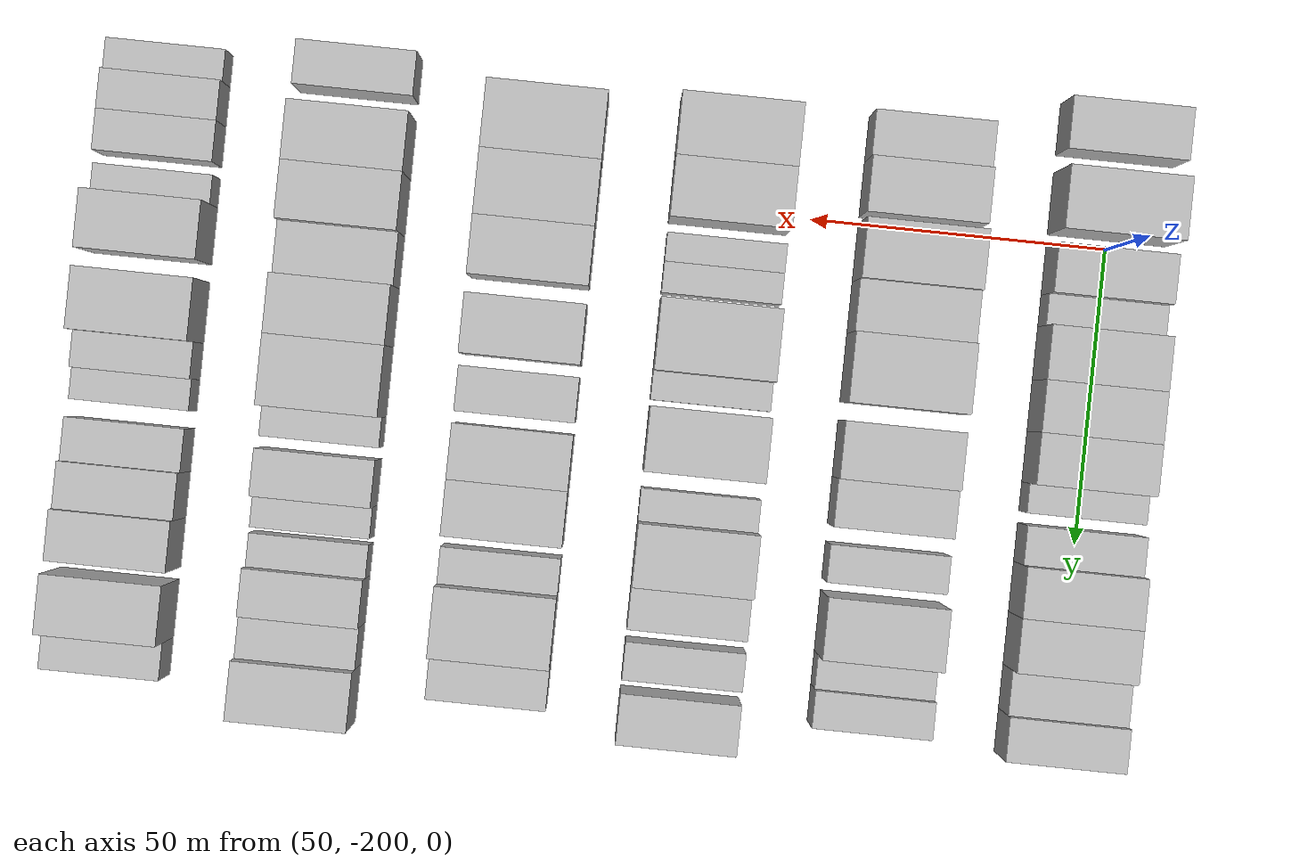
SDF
<sdf version="1.6">
 <world name="default">
  <model name="building_38">
   <static>1</static>
   <pose>50.0000 -219.4275 0 0.000000 0.000000 0.000000</pose>
   <link name="link">
    <pose>0 0 9.00 0 0 0</pose>
    <collision name="collision"><geometry><box><size>20.0000 8.7472 18.0000</size></box></geometry></collision>
    <visual name="visual">
     <cast_shadows>0</cast_shadows>
     <geometry><box><size>20.0000 8.7472 18.0000</size></box></geometry>
     <material>
      <script>
       <uri>model://HANNAS_wall/materials/scripts</uri>
       <uri>model://HANNAS_wall/materials/textures</uri>
       <name>vrc/HANNAS_wall</name>
      </script>
     </material>
    </visual>
   </link>
  </model>
  <model name="building_39">
   <static>1</static>
   <pose>50.0000 -206.8261 0 0.000000 0.000000 0.000000</pose>
   <link name="link">
    <pose>0 0 12.00 0 0 0</pose>
    <collision name="collision"><geometry><box><size>20.0000 10.4555 24.0000</size></box></geometry></collision>
    <visual name="visual">
     <cast_shadows>0</cast_shadows>
     <geometry><box><size>20.0000 10.4555 24.0000</size></box></geometry>
     <material>
      <script>
       <uri>model://HANNAS_wall/materials/scripts</uri>
       <uri>model://HANNAS_wall/materials/textures</uri>
       <name>vrc/HANNAS_wall</name>
      </script>
     </material>
    </visual>
   </link>
  </model>
  <model name="building_40">
   <static>1</static>
   <pose>50.0000 -195.4570 0 0.000000 0.000000 0.000000</pose>
   <link name="link">
    <pose>0 0 9.00 0 0 0</pose>
    <collision name="collision"><geometry><box><size>20.0000 8.2828 18.0000</size></box></geometry></collision>
    <visual name="visual">
     <cast_shadows>0</cast_shadows>
     <geometry><box><size>20.0000 8.2828 18.0000</size></box></geometry>
     <material>
      <script>
       <uri>model://HANNAS_wall/materials/scripts</uri>
       <uri>model://HANNAS_wall/materials/textures</uri>
       <name>vrc/HANNAS_wall</name>
      </script>
     </material>
    </visual>
   </link>
  </model>
  <model name="building_41">
   <static>1</static>
   <pose>50.0000 -188.6431 0 0.000000 0.000000 0.000000</pose>
   <link name="link">
    <pose>0 0 6.00 0 0 0</pose>
    <collision name="collision"><geometry><box><size>20.0000 5.3450 12.0000</size></box></geometry></collision>
    <visual name="visual">
     <cast_shadows>0</cast_shadows>
     <geometry><box><size>20.0000 5.3450 12.0000</size></box></geometry>
     <material>
      <script>
       <uri>model://HANNAS_wall/materials/scripts</uri>
       <uri>model://HANNAS_wall/materials/textures</uri>
       <name>vrc/HANNAS_wall</name>
      </script>
     </material>
    </visual>
   </link>
  </model>
  <model name="building_42">
   <static>1</static>
   <pose>50.0000 -181.4377 0 0.000000 0.000000 0.000000</pose>
   <link name="link">
    <pose>0 0 10.50 0 0 0</pose>
    <collision name="collision"><geometry><box><size>20.0000 9.0657 21.0000</size></box></geometry></collision>
    <visual name="visual">
     <cast_shadows>0</cast_shadows>
     <geometry><box><size>20.0000 9.0657 21.0000</size></box></geometry>
     <material>
      <script>
       <uri>model://HANNAS_wall/materials/scripts</uri>
       <uri>model://HANNAS_wall/materials/textures</uri>
       <name>vrc/HANNAS_wall</name>
      </script>
     </material>
    </visual>
   </link>
  </model>
  <model name="building_43">
   <static>1</static>
   <pose>50.0000 -172.5675 0 0.000000 0.000000 0.000000</pose>
   <link name="link">
    <pose>0 0 10.50 0 0 0</pose>
    <collision name="collision"><geometry><box><size>20.0000 8.6747 21.0000</size></box></geometry></collision>
    <visual name="visual">
     <cast_shadows>0</cast_shadows>
     <geometry><box><size>20.0000 8.6747 21.0000</size></box></geometry>
     <material>
      <script>
       <uri>model://HANNAS_wall/materials/scripts</uri>
       <uri>model://HANNAS_wall/materials/textures</uri>
       <name>vrc/HANNAS_wall</name>
      </script>
     </material>
    </visual>
   </link>
  </model>
  <model name="building_44">
   <static>1</static>
   <pose>50.0000 -163.9352 0 0.000000 0.000000 0.000000</pose>
   <link name="link">
    <pose>0 0 10.50 0 0 0</pose>
    <collision name="collision"><geometry><box><size>20.0000 8.5899 21.0000</size></box></geometry></collision>
    <visual name="visual">
     <cast_shadows>0</cast_shadows>
     <geometry><box><size>20.0000 8.5899 21.0000</size></box></geometry>
     <material>
      <script>
       <uri>model://HANNAS_wall/materials/scripts</uri>
       <uri>model://HANNAS_wall/materials/textures</uri>
       <name>vrc/HANNAS_wall</name>
      </script>
     </material>
    </visual>
   </link>
  </model>
  <model name="building_45">
   <static>1</static>
   <pose>50.0000 -157.1829 0 0.000000 0.000000 0.000000</pose>
   <link name="link">
    <pose>0 0 6.00 0 0 0</pose>
    <collision name="collision"><geometry><box><size>20.0000 4.9147 12.0000</size></box></geometry></collision>
    <visual name="visual">
     <cast_shadows>0</cast_shadows>
     <geometry><box><size>20.0000 4.9147 12.0000</size></box></geometry>
     <material>
      <script>
       <uri>model://HANNAS_wall/materials/scripts</uri>
       <uri>model://HANNAS_wall/materials/textures</uri>
       <name>vrc/HANNAS_wall</name>
      </script>
     </material>
    </visual>
   </link>
  </model>
  <model name="building_46">
   <static>1</static>
   <pose>50.0000 -149.4279 0 0.000000 0.000000 0.000000</pose>
   <link name="link">
    <pose>0 0 7.50 0 0 0</pose>
    <collision name="collision"><geometry><box><size>20.0000 6.5952 15.0000</size></box></geometry></collision>
    <visual name="visual">
     <cast_shadows>0</cast_shadows>
     <geometry><box><size>20.0000 6.5952 15.0000</size></box></geometry>
     <material>
      <script>
       <uri>model://HANNAS_wall/materials/scripts</uri>
       <uri>model://HANNAS_wall/materials/textures</uri>
       <name>vrc/HANNAS_wall</name>
      </script>
     </material>
    </visual>
   </link>
  </model>
  <model name="building_47">
   <static>1</static>
   <pose>50.0000 -141.8846 0 0.000000 0.000000 0.000000</pose>
   <link name="link">
    <pose>0 0 10.50 0 0 0</pose>
    <collision name="collision"><geometry><box><size>20.0000 8.4914 21.0000</size></box></geometry></collision>
    <visual name="visual">
     <cast_shadows>0</cast_shadows>
     <geometry><box><size>20.0000 8.4914 21.0000</size></box></geometry>
     <material>
      <script>
       <uri>model://HANNAS_wall/materials/scripts</uri>
       <uri>model://HANNAS_wall/materials/textures</uri>
       <name>vrc/HANNAS_wall</name>
      </script>
     </material>
    </visual>
   </link>
  </model>
  <model name="building_48">
   <static>1</static>
   <pose>50.0000 -133.1602 0 0.000000 0.000000 0.000000</pose>
   <link name="link">
    <pose>0 0 10.50 0 0 0</pose>
    <collision name="collision"><geometry><box><size>20.0000 8.9574 21.0000</size></box></geometry></collision>
    <visual name="visual">
     <cast_shadows>0</cast_shadows>
     <geometry><box><size>20.0000 8.9574 21.0000</size></box></geometry>
     <material>
      <script>
       <uri>model://HANNAS_wall/materials/scripts</uri>
       <uri>model://HANNAS_wall/materials/textures</uri>
       <name>vrc/HANNAS_wall</name>
      </script>
     </material>
    </visual>
   </link>
  </model>
  <model name="building_49">
   <static>1</static>
   <pose>50.0000 -124.9397 0 0.000000 0.000000 0.000000</pose>
   <link name="link">
    <pose>0 0 7.50 0 0 0</pose>
    <collision name="collision"><geometry><box><size>20.0000 7.4837 15.0000</size></box></geometry></collision>
    <visual name="visual">
     <cast_shadows>0</cast_shadows>
     <geometry><box><size>20.0000 7.4837 15.0000</size></box></geometry>
     <material>
      <script>
       <uri>model://HANNAS_wall/materials/scripts</uri>
       <uri>model://HANNAS_wall/materials/textures</uri>
       <name>vrc/HANNAS_wall</name>
      </script>
     </material>
    </visual>
   </link>
  </model>
  <model name="building_50">
   <static>1</static>
   <pose>50.0000 -117.5164 0 0.000000 0.000000 0.000000</pose>
   <link name="link">
    <pose>0 0 9.00 0 0 0</pose>
    <collision name="collision"><geometry><box><size>20.0000 7.3629 18.0000</size></box></geometry></collision>
    <visual name="visual">
     <cast_shadows>0</cast_shadows>
     <geometry><box><size>20.0000 7.3629 18.0000</size></box></geometry>
     <material>
      <script>
       <uri>model://HANNAS_wall/materials/scripts</uri>
       <uri>model://HANNAS_wall/materials/textures</uri>
       <name>vrc/HANNAS_wall</name>
      </script>
     </material>
    </visual>
   </link>
  </model>
  <model name="building_162">
   <static>1</static>
   <pose>82.0000 -214.3514 0 0.000000 0.000000 0.000000</pose>
   <link name="link">
    <pose>0 0 9.00 0 0 0</pose>
    <collision name="collision"><geometry><box><size>20.0000 7.7878 18.0000</size></box></geometry></collision>
    <visual name="visual">
     <cast_shadows>0</cast_shadows>
     <geometry><box><size>20.0000 7.7878 18.0000</size></box></geometry>
     <material>
      <script>
       <uri>model://HANNAS_wall/materials/scripts</uri>
       <uri>model://HANNAS_wall/materials/textures</uri>
       <name>vrc/HANNAS_wall</name>
      </script>
     </material>
    </visual>
   </link>
  </model>
  <model name="building_163">
   <static>1</static>
   <pose>82.0000 -205.8261 0 0.000000 0.000000 0.000000</pose>
   <link name="link">
    <pose>0 0 10.50 0 0 0</pose>
    <collision name="collision"><geometry><box><size>20.0000 9.2627 21.0000</size></box></geometry></collision>
    <visual name="visual">
     <cast_shadows>0</cast_shadows>
     <geometry><box><size>20.0000 9.2627 21.0000</size></box></geometry>
     <material>
      <script>
       <uri>model://HANNAS_wall/materials/scripts</uri>
       <uri>model://HANNAS_wall/materials/textures</uri>
       <name>vrc/HANNAS_wall</name>
      </script>
     </material>
    </visual>
   </link>
  </model>
  <model name="building_164">
   <static>1</static>
   <pose>82.0000 -195.2142 0 0.000000 0.000000 0.000000</pose>
   <link name="link">
    <pose>0 0 12.00 0 0 0</pose>
    <collision name="collision"><geometry><box><size>20.0000 9.9611 24.0000</size></box></geometry></collision>
    <visual name="visual">
     <cast_shadows>0</cast_shadows>
     <geometry><box><size>20.0000 9.9611 24.0000</size></box></geometry>
     <material>
      <script>
       <uri>model://HANNAS_wall/materials/scripts</uri>
       <uri>model://HANNAS_wall/materials/textures</uri>
       <name>vrc/HANNAS_wall</name>
      </script>
     </material>
    </visual>
   </link>
  </model>
  <model name="building_165">
   <static>1</static>
   <pose>82.0000 -185.8773 0 0.000000 0.000000 0.000000</pose>
   <link name="link">
    <pose>0 0 10.50 0 0 0</pose>
    <collision name="collision"><geometry><box><size>20.0000 8.7129 21.0000</size></box></geometry></collision>
    <visual name="visual">
     <cast_shadows>0</cast_shadows>
     <geometry><box><size>20.0000 8.7129 21.0000</size></box></geometry>
     <material>
      <script>
       <uri>model://HANNAS_wall/materials/scripts</uri>
       <uri>model://HANNAS_wall/materials/textures</uri>
       <name>vrc/HANNAS_wall</name>
      </script>
     </material>
    </visual>
   </link>
  </model>
  <model name="building_166">
   <static>1</static>
   <pose>82.0000 -175.6885 0 0.000000 0.000000 0.000000</pose>
   <link name="link">
    <pose>0 0 12.00 0 0 0</pose>
    <collision name="collision"><geometry><box><size>20.0000 11.6646 24.0000</size></box></geometry></collision>
    <visual name="visual">
     <cast_shadows>0</cast_shadows>
     <geometry><box><size>20.0000 11.6646 24.0000</size></box></geometry>
     <material>
      <script>
       <uri>model://HANNAS_wall/materials/scripts</uri>
       <uri>model://HANNAS_wall/materials/textures</uri>
       <name>vrc/HANNAS_wall</name>
      </script>
     </material>
    </visual>
   </link>
  </model>
  <model name="building_167">
   <static>1</static>
   <pose>82.0000 -162.0778 0 0.000000 0.000000 0.000000</pose>
   <link name="link">
    <pose>0 0 10.50 0 0 0</pose>
    <collision name="collision"><geometry><box><size>20.0000 9.5568 21.0000</size></box></geometry></collision>
    <visual name="visual">
     <cast_shadows>0</cast_shadows>
     <geometry><box><size>20.0000 9.5568 21.0000</size></box></geometry>
     <material>
      <script>
       <uri>model://HANNAS_wall/materials/scripts</uri>
       <uri>model://HANNAS_wall/materials/textures</uri>
       <name>vrc/HANNAS_wall</name>
      </script>
     </material>
    </visual>
   </link>
  </model>
  <model name="building_168">
   <static>1</static>
   <pose>82.0000 -153.3064 0 0.000000 0.000000 0.000000</pose>
   <link name="link">
    <pose>0 0 9.00 0 0 0</pose>
    <collision name="collision"><geometry><box><size>20.0000 7.9859 18.0000</size></box></geometry></collision>
    <visual name="visual">
     <cast_shadows>0</cast_shadows>
     <geometry><box><size>20.0000 7.9859 18.0000</size></box></geometry>
     <material>
      <script>
       <uri>model://HANNAS_wall/materials/scripts</uri>
       <uri>model://HANNAS_wall/materials/textures</uri>
       <name>vrc/HANNAS_wall</name>
      </script>
     </material>
    </visual>
   </link>
  </model>
  <model name="building_169">
   <static>1</static>
   <pose>82.0000 -143.1608 0 0.000000 0.000000 0.000000</pose>
   <link name="link">
    <pose>0 0 7.50 0 0 0</pose>
    <collision name="collision"><geometry><box><size>20.0000 6.3053 15.0000</size></box></geometry></collision>
    <visual name="visual">
     <cast_shadows>0</cast_shadows>
     <geometry><box><size>20.0000 6.3053 15.0000</size></box></geometry>
     <material>
      <script>
       <uri>model://HANNAS_wall/materials/scripts</uri>
       <uri>model://HANNAS_wall/materials/textures</uri>
       <name>vrc/HANNAS_wall</name>
      </script>
     </material>
    </visual>
   </link>
  </model>
  <model name="building_170">
   <static>1</static>
   <pose>82.0000 -132.8674 0 0.000000 0.000000 0.000000</pose>
   <link name="link">
    <pose>0 0 12.00 0 0 0</pose>
    <collision name="collision"><geometry><box><size>20.0000 10.2815 24.0000</size></box></geometry></collision>
    <visual name="visual">
     <cast_shadows>0</cast_shadows>
     <geometry><box><size>20.0000 10.2815 24.0000</size></box></geometry>
     <material>
      <script>
       <uri>model://HANNAS_wall/materials/scripts</uri>
       <uri>model://HANNAS_wall/materials/textures</uri>
       <name>vrc/HANNAS_wall</name>
      </script>
     </material>
    </visual>
   </link>
  </model>
  <model name="building_171">
   <static>1</static>
   <pose>82.0000 -124.9114 0 0.000000 0.000000 0.000000</pose>
   <link name="link">
    <pose>0 0 6.00 0 0 0</pose>
    <collision name="collision"><geometry><box><size>20.0000 5.6306 12.0000</size></box></geometry></collision>
    <visual name="visual">
     <cast_shadows>0</cast_shadows>
     <geometry><box><size>20.0000 5.6306 12.0000</size></box></geometry>
     <material>
      <script>
       <uri>model://HANNAS_wall/materials/scripts</uri>
       <uri>model://HANNAS_wall/materials/textures</uri>
       <name>vrc/HANNAS_wall</name>
      </script>
     </material>
    </visual>
   </link>
  </model>
  <model name="building_172">
   <static>1</static>
   <pose>82.0000 -118.9511 0 0.000000 0.000000 0.000000</pose>
   <link name="link">
    <pose>0 0 7.50 0 0 0</pose>
    <collision name="collision"><geometry><box><size>20.0000 6.2899 15.0000</size></box></geometry></collision>
    <visual name="visual">
     <cast_shadows>0</cast_shadows>
     <geometry><box><size>20.0000 6.2899 15.0000</size></box></geometry>
     <material>
      <script>
       <uri>model://HANNAS_wall/materials/scripts</uri>
       <uri>model://HANNAS_wall/materials/textures</uri>
       <name>vrc/HANNAS_wall</name>
      </script>
     </material>
    </visual>
   </link>
  </model>
  <model name="building_282">
   <static>1</static>
   <pose>114.0000 -212.3161 0 0.000000 0.000000 0.000000</pose>
   <link name="link">
    <pose>0 0 12.00 0 0 0</pose>
    <collision name="collision"><geometry><box><size>20.0000 10.4856 24.0000</size></box></geometry></collision>
    <visual name="visual">
     <cast_shadows>0</cast_shadows>
     <geometry><box><size>20.0000 10.4856 24.0000</size></box></geometry>
     <material>
      <script>
       <uri>model://HANNAS_wall/materials/scripts</uri>
       <uri>model://HANNAS_wall/materials/textures</uri>
       <name>vrc/HANNAS_wall</name>
      </script>
     </material>
    </visual>
   </link>
  </model>
  <model name="building_283">
   <static>1</static>
   <pose>114.0000 -202.0130 0 0.000000 0.000000 0.000000</pose>
   <link name="link">
    <pose>0 0 12.00 0 0 0</pose>
    <collision name="collision"><geometry><box><size>20.0000 10.1205 24.0000</size></box></geometry></collision>
    <visual name="visual">
     <cast_shadows>0</cast_shadows>
     <geometry><box><size>20.0000 10.1205 24.0000</size></box></geometry>
     <material>
      <script>
       <uri>model://HANNAS_wall/materials/scripts</uri>
       <uri>model://HANNAS_wall/materials/textures</uri>
       <name>vrc/HANNAS_wall</name>
      </script>
     </material>
    </visual>
   </link>
  </model>
  <model name="building_284">
   <static>1</static>
   <pose>114.0000 -192.5297 0 0.000000 0.000000 0.000000</pose>
   <link name="link">
    <pose>0 0 6.00 0 0 0</pose>
    <collision name="collision"><geometry><box><size>20.0000 4.8463 12.0000</size></box></geometry></collision>
    <visual name="visual">
     <cast_shadows>0</cast_shadows>
     <geometry><box><size>20.0000 4.8463 12.0000</size></box></geometry>
     <material>
      <script>
       <uri>model://HANNAS_wall/materials/scripts</uri>
       <uri>model://HANNAS_wall/materials/textures</uri>
       <name>vrc/HANNAS_wall</name>
      </script>
     </material>
    </visual>
   </link>
  </model>
  <model name="building_285">
   <static>1</static>
   <pose>114.0000 -187.4774 0 0.000000 0.000000 0.000000</pose>
   <link name="link">
    <pose>0 0 6.00 0 0 0</pose>
    <collision name="collision"><geometry><box><size>20.0000 5.2582 12.0000</size></box></geometry></collision>
    <visual name="visual">
     <cast_shadows>0</cast_shadows>
     <geometry><box><size>20.0000 5.2582 12.0000</size></box></geometry>
     <material>
      <script>
       <uri>model://HANNAS_wall/materials/scripts</uri>
       <uri>model://HANNAS_wall/materials/textures</uri>
       <name>vrc/HANNAS_wall</name>
      </script>
     </material>
    </visual>
   </link>
  </model>
  <model name="building_286">
   <static>1</static>
   <pose>114.0000 -177.8605 0 0.000000 0.000000 0.000000</pose>
   <link name="link">
    <pose>0 0 12.00 0 0 0</pose>
    <collision name="collision"><geometry><box><size>20.0000 11.9756 24.0000</size></box></geometry></collision>
    <visual name="visual">
     <cast_shadows>0</cast_shadows>
     <geometry><box><size>20.0000 11.9756 24.0000</size></box></geometry>
     <material>
      <script>
       <uri>model://HANNAS_wall/materials/scripts</uri>
       <uri>model://HANNAS_wall/materials/textures</uri>
       <name>vrc/HANNAS_wall</name>
      </script>
     </material>
    </visual>
   </link>
  </model>
  <model name="building_287">
   <static>1</static>
   <pose>114.0000 -169.4391 0 0.000000 0.000000 0.000000</pose>
   <link name="link">
    <pose>0 0 6.00 0 0 0</pose>
    <collision name="collision"><geometry><box><size>20.0000 4.8673 12.0000</size></box></geometry></collision>
    <visual name="visual">
     <cast_shadows>0</cast_shadows>
     <geometry><box><size>20.0000 4.8673 12.0000</size></box></geometry>
     <material>
      <script>
       <uri>model://HANNAS_wall/materials/scripts</uri>
       <uri>model://HANNAS_wall/materials/textures</uri>
       <name>vrc/HANNAS_wall</name>
      </script>
     </material>
    </visual>
   </link>
  </model>
  <model name="building_288">
   <static>1</static>
   <pose>114.0000 -160.6429 0 0.000000 0.000000 0.000000</pose>
   <link name="link">
    <pose>0 0 12.00 0 0 0</pose>
    <collision name="collision"><geometry><box><size>20.0000 10.7250 24.0000</size></box></geometry></collision>
    <visual name="visual">
     <cast_shadows>0</cast_shadows>
     <geometry><box><size>20.0000 10.7250 24.0000</size></box></geometry>
     <material>
      <script>
       <uri>model://HANNAS_wall/materials/scripts</uri>
       <uri>model://HANNAS_wall/materials/textures</uri>
       <name>vrc/HANNAS_wall</name>
      </script>
     </material>
    </visual>
   </link>
  </model>
  <model name="building_289">
   <static>1</static>
   <pose>114.0000 -149.5323 0 0.000000 0.000000 0.000000</pose>
   <link name="link">
    <pose>0 0 6.00 0 0 0</pose>
    <collision name="collision"><geometry><box><size>20.0000 5.4963 12.0000</size></box></geometry></collision>
    <visual name="visual">
     <cast_shadows>0</cast_shadows>
     <geometry><box><size>20.0000 5.4963 12.0000</size></box></geometry>
     <material>
      <script>
       <uri>model://HANNAS_wall/materials/scripts</uri>
       <uri>model://HANNAS_wall/materials/textures</uri>
       <name>vrc/HANNAS_wall</name>
      </script>
     </material>
    </visual>
   </link>
  </model>
  <model name="building_290">
   <static>1</static>
   <pose>114.0000 -141.5375 0 0.000000 0.000000 0.000000</pose>
   <link name="link">
    <pose>0 0 12.00 0 0 0</pose>
    <collision name="collision"><geometry><box><size>20.0000 10.4931 24.0000</size></box></geometry></collision>
    <visual name="visual">
     <cast_shadows>0</cast_shadows>
     <geometry><box><size>20.0000 10.4931 24.0000</size></box></geometry>
     <material>
      <script>
       <uri>model://HANNAS_wall/materials/scripts</uri>
       <uri>model://HANNAS_wall/materials/textures</uri>
       <name>vrc/HANNAS_wall</name>
      </script>
     </material>
    </visual>
   </link>
  </model>
  <model name="building_291">
   <static>1</static>
   <pose>114.0000 -132.5868 0 0.000000 0.000000 0.000000</pose>
   <link name="link">
    <pose>0 0 7.50 0 0 0</pose>
    <collision name="collision"><geometry><box><size>20.0000 7.4084 15.0000</size></box></geometry></collision>
    <visual name="visual">
     <cast_shadows>0</cast_shadows>
     <geometry><box><size>20.0000 7.4084 15.0000</size></box></geometry>
     <material>
      <script>
       <uri>model://HANNAS_wall/materials/scripts</uri>
       <uri>model://HANNAS_wall/materials/textures</uri>
       <name>vrc/HANNAS_wall</name>
      </script>
     </material>
    </visual>
   </link>
  </model>
  <model name="building_292">
   <static>1</static>
   <pose>114.0000 -123.7070 0 0.000000 0.000000 0.000000</pose>
   <link name="link">
    <pose>0 0 7.50 0 0 0</pose>
    <collision name="collision"><geometry><box><size>20.0000 6.3512 15.0000</size></box></geometry></collision>
    <visual name="visual">
     <cast_shadows>0</cast_shadows>
     <geometry><box><size>20.0000 6.3512 15.0000</size></box></geometry>
     <material>
      <script>
       <uri>model://HANNAS_wall/materials/scripts</uri>
       <uri>model://HANNAS_wall/materials/textures</uri>
       <name>vrc/HANNAS_wall</name>
      </script>
     </material>
    </visual>
   </link>
  </model>
  <model name="building_293">
   <static>1</static>
   <pose>114.0000 -114.2984 0 0.000000 0.000000 0.000000</pose>
   <link name="link">
    <pose>0 0 9.00 0 0 0</pose>
    <collision name="collision"><geometry><box><size>20.0000 8.4658 18.0000</size></box></geometry></collision>
    <visual name="visual">
     <cast_shadows>0</cast_shadows>
     <geometry><box><size>20.0000 8.4658 18.0000</size></box></geometry>
     <material>
      <script>
       <uri>model://HANNAS_wall/materials/scripts</uri>
       <uri>model://HANNAS_wall/materials/textures</uri>
       <name>vrc/HANNAS_wall</name>
      </script>
     </material>
    </visual>
   </link>
  </model>
  <model name="building_408">
   <static>1</static>
   <pose>146.0000 -210.6489 0 0.000000 0.000000 0.000000</pose>
   <link name="link">
    <pose>0 0 12.00 0 0 0</pose>
    <collision name="collision"><geometry><box><size>20.0000 11.3368 24.0000</size></box></geometry></collision>
    <visual name="visual">
     <cast_shadows>0</cast_shadows>
     <geometry><box><size>20.0000 11.3368 24.0000</size></box></geometry>
     <material>
      <script>
       <uri>model://HANNAS_wall/materials/scripts</uri>
       <uri>model://HANNAS_wall/materials/textures</uri>
       <name>vrc/HANNAS_wall</name>
      </script>
     </material>
    </visual>
   </link>
  </model>
  <model name="building_409">
   <static>1</static>
   <pose>146.0000 -199.5320 0 0.000000 0.000000 0.000000</pose>
   <link name="link">
    <pose>0 0 12.00 0 0 0</pose>
    <collision name="collision"><geometry><box><size>20.0000 10.8970 24.0000</size></box></geometry></collision>
    <visual name="visual">
     <cast_shadows>0</cast_shadows>
     <geometry><box><size>20.0000 10.8970 24.0000</size></box></geometry>
     <material>
      <script>
       <uri>model://HANNAS_wall/materials/scripts</uri>
       <uri>model://HANNAS_wall/materials/textures</uri>
       <name>vrc/HANNAS_wall</name>
      </script>
     </material>
    </visual>
   </link>
  </model>
  <model name="building_410">
   <static>1</static>
   <pose>146.0000 -189.1977 0 0.000000 0.000000 0.000000</pose>
   <link name="link">
    <pose>0 0 12.00 0 0 0</pose>
    <collision name="collision"><geometry><box><size>20.0000 9.7716 24.0000</size></box></geometry></collision>
    <visual name="visual">
     <cast_shadows>0</cast_shadows>
     <geometry><box><size>20.0000 9.7716 24.0000</size></box></geometry>
     <material>
      <script>
       <uri>model://HANNAS_wall/materials/scripts</uri>
       <uri>model://HANNAS_wall/materials/textures</uri>
       <name>vrc/HANNAS_wall</name>
      </script>
     </material>
    </visual>
   </link>
  </model>
  <model name="building_411">
   <static>1</static>
   <pose>146.0000 -176.3511 0 0.000000 0.000000 0.000000</pose>
   <link name="link">
    <pose>0 0 12.00 0 0 0</pose>
    <collision name="collision"><geometry><box><size>20.0000 9.9216 24.0000</size></box></geometry></collision>
    <visual name="visual">
     <cast_shadows>0</cast_shadows>
     <geometry><box><size>20.0000 9.9216 24.0000</size></box></geometry>
     <material>
      <script>
       <uri>model://HANNAS_wall/materials/scripts</uri>
       <uri>model://HANNAS_wall/materials/textures</uri>
       <name>vrc/HANNAS_wall</name>
      </script>
     </material>
    </visual>
   </link>
  </model>
  <model name="building_412">
   <static>1</static>
   <pose>146.0000 -165.6353 0 0.000000 0.000000 0.000000</pose>
   <link name="link">
    <pose>0 0 9.00 0 0 0</pose>
    <collision name="collision"><geometry><box><size>20.0000 7.5100 18.0000</size></box></geometry></collision>
    <visual name="visual">
     <cast_shadows>0</cast_shadows>
     <geometry><box><size>20.0000 7.5100 18.0000</size></box></geometry>
     <material>
      <script>
       <uri>model://HANNAS_wall/materials/scripts</uri>
       <uri>model://HANNAS_wall/materials/textures</uri>
       <name>vrc/HANNAS_wall</name>
      </script>
     </material>
    </visual>
   </link>
  </model>
  <model name="building_413">
   <static>1</static>
   <pose>146.0000 -155.2590 0 0.000000 0.000000 0.000000</pose>
   <link name="link">
    <pose>0 0 10.50 0 0 0</pose>
    <collision name="collision"><geometry><box><size>20.0000 9.2427 21.0000</size></box></geometry></collision>
    <visual name="visual">
     <cast_shadows>0</cast_shadows>
     <geometry><box><size>20.0000 9.2427 21.0000</size></box></geometry>
     <material>
      <script>
       <uri>model://HANNAS_wall/materials/scripts</uri>
       <uri>model://HANNAS_wall/materials/textures</uri>
       <name>vrc/HANNAS_wall</name>
      </script>
     </material>
    </visual>
   </link>
  </model>
  <model name="building_414">
   <static>1</static>
   <pose>146.0000 -145.9884 0 0.000000 0.000000 0.000000</pose>
   <link name="link">
    <pose>0 0 10.50 0 0 0</pose>
    <collision name="collision"><geometry><box><size>20.0000 9.2984 21.0000</size></box></geometry></collision>
    <visual name="visual">
     <cast_shadows>0</cast_shadows>
     <geometry><box><size>20.0000 9.2984 21.0000</size></box></geometry>
     <material>
      <script>
       <uri>model://HANNAS_wall/materials/scripts</uri>
       <uri>model://HANNAS_wall/materials/textures</uri>
       <name>vrc/HANNAS_wall</name>
      </script>
     </material>
    </visual>
   </link>
  </model>
  <model name="building_415">
   <static>1</static>
   <pose>146.0000 -136.2733 0 0.000000 0.000000 0.000000</pose>
   <link name="link">
    <pose>0 0 7.50 0 0 0</pose>
    <collision name="collision"><geometry><box><size>20.0000 6.1318 15.0000</size></box></geometry></collision>
    <visual name="visual">
     <cast_shadows>0</cast_shadows>
     <geometry><box><size>20.0000 6.1318 15.0000</size></box></geometry>
     <material>
      <script>
       <uri>model://HANNAS_wall/materials/scripts</uri>
       <uri>model://HANNAS_wall/materials/textures</uri>
       <name>vrc/HANNAS_wall</name>
      </script>
     </material>
    </visual>
   </link>
  </model>
  <model name="building_416">
   <static>1</static>
   <pose>146.0000 -127.3214 0 0.000000 0.000000 0.000000</pose>
   <link name="link">
    <pose>0 0 12.00 0 0 0</pose>
    <collision name="collision"><geometry><box><size>20.0000 11.7721 24.0000</size></box></geometry></collision>
    <visual name="visual">
     <cast_shadows>0</cast_shadows>
     <geometry><box><size>20.0000 11.7721 24.0000</size></box></geometry>
     <material>
      <script>
       <uri>model://HANNAS_wall/materials/scripts</uri>
       <uri>model://HANNAS_wall/materials/textures</uri>
       <name>vrc/HANNAS_wall</name>
      </script>
     </material>
    </visual>
   </link>
  </model>
  <model name="building_417">
   <static>1</static>
   <pose>146.0000 -117.7357 0 0.000000 0.000000 0.000000</pose>
   <link name="link">
    <pose>0 0 7.50 0 0 0</pose>
    <collision name="collision"><geometry><box><size>20.0000 7.3992 15.0000</size></box></geometry></collision>
    <visual name="visual">
     <cast_shadows>0</cast_shadows>
     <geometry><box><size>20.0000 7.3992 15.0000</size></box></geometry>
     <material>
      <script>
       <uri>model://HANNAS_wall/materials/scripts</uri>
       <uri>model://HANNAS_wall/materials/textures</uri>
       <name>vrc/HANNAS_wall</name>
      </script>
     </material>
    </visual>
   </link>
  </model>
  <model name="building_525">
   <static>1</static>
   <pose>178.0000 -216.2473 0 0.000000 0.000000 0.000000</pose>
   <link name="link">
    <pose>0 0 9.00 0 0 0</pose>
    <collision name="collision"><geometry><box><size>20.0000 7.3705 18.0000</size></box></geometry></collision>
    <visual name="visual">
     <cast_shadows>0</cast_shadows>
     <geometry><box><size>20.0000 7.3705 18.0000</size></box></geometry>
     <material>
      <script>
       <uri>model://HANNAS_wall/materials/scripts</uri>
       <uri>model://HANNAS_wall/materials/textures</uri>
       <name>vrc/HANNAS_wall</name>
      </script>
     </material>
    </visual>
   </link>
  </model>
  <model name="building_526">
   <static>1</static>
   <pose>178.0000 -204.6267 0 0.000000 0.000000 0.000000</pose>
   <link name="link">
    <pose>0 0 12.00 0 0 0</pose>
    <collision name="collision"><geometry><box><size>20.0000 9.8707 24.0000</size></box></geometry></collision>
    <visual name="visual">
     <cast_shadows>0</cast_shadows>
     <geometry><box><size>20.0000 9.8707 24.0000</size></box></geometry>
     <material>
      <script>
       <uri>model://HANNAS_wall/materials/scripts</uri>
       <uri>model://HANNAS_wall/materials/textures</uri>
       <name>vrc/HANNAS_wall</name>
      </script>
     </material>
    </visual>
   </link>
  </model>
  <model name="building_527">
   <static>1</static>
   <pose>178.0000 -194.8846 0 0.000000 0.000000 0.000000</pose>
   <link name="link">
    <pose>0 0 12.00 0 0 0</pose>
    <collision name="collision"><geometry><box><size>20.0000 9.6134 24.0000</size></box></geometry></collision>
    <visual name="visual">
     <cast_shadows>0</cast_shadows>
     <geometry><box><size>20.0000 9.6134 24.0000</size></box></geometry>
     <material>
      <script>
       <uri>model://HANNAS_wall/materials/scripts</uri>
       <uri>model://HANNAS_wall/materials/textures</uri>
       <name>vrc/HANNAS_wall</name>
      </script>
     </material>
    </visual>
   </link>
  </model>
  <model name="building_528">
   <static>1</static>
   <pose>178.0000 -185.6450 0 0.000000 0.000000 0.000000</pose>
   <link name="link">
    <pose>0 0 9.00 0 0 0</pose>
    <collision name="collision"><geometry><box><size>20.0000 8.8658 18.0000</size></box></geometry></collision>
    <visual name="visual">
     <cast_shadows>0</cast_shadows>
     <geometry><box><size>20.0000 8.8658 18.0000</size></box></geometry>
     <material>
      <script>
       <uri>model://HANNAS_wall/materials/scripts</uri>
       <uri>model://HANNAS_wall/materials/textures</uri>
       <name>vrc/HANNAS_wall</name>
      </script>
     </material>
    </visual>
   </link>
  </model>
  <model name="building_529">
   <static>1</static>
   <pose>178.0000 -176.2622 0 0.000000 0.000000 0.000000</pose>
   <link name="link">
    <pose>0 0 12.00 0 0 0</pose>
    <collision name="collision"><geometry><box><size>20.0000 9.8998 24.0000</size></box></geometry></collision>
    <visual name="visual">
     <cast_shadows>0</cast_shadows>
     <geometry><box><size>20.0000 9.8998 24.0000</size></box></geometry>
     <material>
      <script>
       <uri>model://HANNAS_wall/materials/scripts</uri>
       <uri>model://HANNAS_wall/materials/textures</uri>
       <name>vrc/HANNAS_wall</name>
      </script>
     </material>
    </visual>
   </link>
  </model>
  <model name="building_530">
   <static>1</static>
   <pose>178.0000 -165.4234 0 0.000000 0.000000 0.000000</pose>
   <link name="link">
    <pose>0 0 12.00 0 0 0</pose>
    <collision name="collision"><geometry><box><size>20.0000 11.7779 24.0000</size></box></geometry></collision>
    <visual name="visual">
     <cast_shadows>0</cast_shadows>
     <geometry><box><size>20.0000 11.7779 24.0000</size></box></geometry>
     <material>
      <script>
       <uri>model://HANNAS_wall/materials/scripts</uri>
       <uri>model://HANNAS_wall/materials/textures</uri>
       <name>vrc/HANNAS_wall</name>
      </script>
     </material>
    </visual>
   </link>
  </model>
  <model name="building_531">
   <static>1</static>
   <pose>178.0000 -156.9739 0 0.000000 0.000000 0.000000</pose>
   <link name="link">
    <pose>0 0 6.00 0 0 0</pose>
    <collision name="collision"><geometry><box><size>20.0000 5.1211 12.0000</size></box></geometry></collision>
    <visual name="visual">
     <cast_shadows>0</cast_shadows>
     <geometry><box><size>20.0000 5.1211 12.0000</size></box></geometry>
     <material>
      <script>
       <uri>model://HANNAS_wall/materials/scripts</uri>
       <uri>model://HANNAS_wall/materials/textures</uri>
       <name>vrc/HANNAS_wall</name>
      </script>
     </material>
    </visual>
   </link>
  </model>
  <model name="building_532">
   <static>1</static>
   <pose>178.0000 -148.4523 0 0.000000 0.000000 0.000000</pose>
   <link name="link">
    <pose>0 0 9.00 0 0 0</pose>
    <collision name="collision"><geometry><box><size>20.0000 7.9220 18.0000</size></box></geometry></collision>
    <visual name="visual">
     <cast_shadows>0</cast_shadows>
     <geometry><box><size>20.0000 7.9220 18.0000</size></box></geometry>
     <material>
      <script>
       <uri>model://HANNAS_wall/materials/scripts</uri>
       <uri>model://HANNAS_wall/materials/textures</uri>
       <name>vrc/HANNAS_wall</name>
      </script>
     </material>
    </visual>
   </link>
  </model>
  <model name="building_533">
   <static>1</static>
   <pose>178.0000 -141.8501 0 0.000000 0.000000 0.000000</pose>
   <link name="link">
    <pose>0 0 6.00 0 0 0</pose>
    <collision name="collision"><geometry><box><size>20.0000 5.2824 12.0000</size></box></geometry></collision>
    <visual name="visual">
     <cast_shadows>0</cast_shadows>
     <geometry><box><size>20.0000 5.2824 12.0000</size></box></geometry>
     <material>
      <script>
       <uri>model://HANNAS_wall/materials/scripts</uri>
       <uri>model://HANNAS_wall/materials/textures</uri>
       <name>vrc/HANNAS_wall</name>
      </script>
     </material>
    </visual>
   </link>
  </model>
  <model name="building_534">
   <static>1</static>
   <pose>178.0000 -135.3900 0 0.000000 0.000000 0.000000</pose>
   <link name="link">
    <pose>0 0 6.00 0 0 0</pose>
    <collision name="collision"><geometry><box><size>20.0000 5.6378 12.0000</size></box></geometry></collision>
    <visual name="visual">
     <cast_shadows>0</cast_shadows>
     <geometry><box><size>20.0000 5.6378 12.0000</size></box></geometry>
     <material>
      <script>
       <uri>model://HANNAS_wall/materials/scripts</uri>
       <uri>model://HANNAS_wall/materials/textures</uri>
       <name>vrc/HANNAS_wall</name>
      </script>
     </material>
    </visual>
   </link>
  </model>
  <model name="building_535">
   <static>1</static>
   <pose>178.0000 -128.5743 0 0.000000 0.000000 0.000000</pose>
   <link name="link">
    <pose>0 0 9.00 0 0 0</pose>
    <collision name="collision"><geometry><box><size>20.0000 7.9938 18.0000</size></box></geometry></collision>
    <visual name="visual">
     <cast_shadows>0</cast_shadows>
     <geometry><box><size>20.0000 7.9938 18.0000</size></box></geometry>
     <material>
      <script>
       <uri>model://HANNAS_wall/materials/scripts</uri>
       <uri>model://HANNAS_wall/materials/textures</uri>
       <name>vrc/HANNAS_wall</name>
      </script>
     </material>
    </visual>
   </link>
  </model>
  <model name="building_536">
   <static>1</static>
   <pose>178.0000 -121.0532 0 0.000000 0.000000 0.000000</pose>
   <link name="link">
    <pose>0 0 7.50 0 0 0</pose>
    <collision name="collision"><geometry><box><size>20.0000 7.0484 15.0000</size></box></geometry></collision>
    <visual name="visual">
     <cast_shadows>0</cast_shadows>
     <geometry><box><size>20.0000 7.0484 15.0000</size></box></geometry>
     <material>
      <script>
       <uri>model://HANNAS_wall/materials/scripts</uri>
       <uri>model://HANNAS_wall/materials/textures</uri>
       <name>vrc/HANNAS_wall</name>
      </script>
     </material>
    </visual>
   </link>
  </model>
  <model name="building_537">
   <static>1</static>
   <pose>178.0000 -112.6018 0 0.000000 0.000000 0.000000</pose>
   <link name="link">
    <pose>0 0 10.50 0 0 0</pose>
    <collision name="collision"><geometry><box><size>20.0000 9.8544 21.0000</size></box></geometry></collision>
    <visual name="visual">
     <cast_shadows>0</cast_shadows>
     <geometry><box><size>20.0000 9.8544 21.0000</size></box></geometry>
     <material>
      <script>
       <uri>model://HANNAS_wall/materials/scripts</uri>
       <uri>model://HANNAS_wall/materials/textures</uri>
       <name>vrc/HANNAS_wall</name>
      </script>
     </material>
    </visual>
   </link>
  </model>
  <model name="building_643">
   <static>1</static>
   <pose>210.0000 -214.8314 0 0.000000 0.000000 0.000000</pose>
   <link name="link">
    <pose>0 0 6.00 0 0 0</pose>
    <collision name="collision"><geometry><box><size>20.0000 5.3443 12.0000</size></box></geometry></collision>
    <visual name="visual">
     <cast_shadows>0</cast_shadows>
     <geometry><box><size>20.0000 5.3443 12.0000</size></box></geometry>
     <material>
      <script>
       <uri>model://HANNAS_wall/materials/scripts</uri>
       <uri>model://HANNAS_wall/materials/textures</uri>
       <name>vrc/HANNAS_wall</name>
      </script>
     </material>
    </visual>
   </link>
  </model>
  <model name="building_644">
   <static>1</static>
   <pose>210.0000 -208.8065 0 0.000000 0.000000 0.000000</pose>
   <link name="link">
    <pose>0 0 7.50 0 0 0</pose>
    <collision name="collision"><geometry><box><size>20.0000 6.7055 15.0000</size></box></geometry></collision>
    <visual name="visual">
     <cast_shadows>0</cast_shadows>
     <geometry><box><size>20.0000 6.7055 15.0000</size></box></geometry>
     <material>
      <script>
       <uri>model://HANNAS_wall/materials/scripts</uri>
       <uri>model://HANNAS_wall/materials/textures</uri>
       <name>vrc/HANNAS_wall</name>
      </script>
     </material>
    </visual>
   </link>
  </model>
  <model name="building_645">
   <static>1</static>
   <pose>210.0000 -202.0222 0 0.000000 0.000000 0.000000</pose>
   <link name="link">
    <pose>0 0 7.50 0 0 0</pose>
    <collision name="collision"><geometry><box><size>20.0000 6.8630 15.0000</size></box></geometry></collision>
    <visual name="visual">
     <cast_shadows>0</cast_shadows>
     <geometry><box><size>20.0000 6.8630 15.0000</size></box></geometry>
     <material>
      <script>
       <uri>model://HANNAS_wall/materials/scripts</uri>
       <uri>model://HANNAS_wall/materials/textures</uri>
       <name>vrc/HANNAS_wall</name>
      </script>
     </material>
    </visual>
   </link>
  </model>
  <model name="building_646">
   <static>1</static>
   <pose>210.0000 -194.1685 0 0.000000 0.000000 0.000000</pose>
   <link name="link">
    <pose>0 0 6.00 0 0 0</pose>
    <collision name="collision"><geometry><box><size>20.0000 4.8445 12.0000</size></box></geometry></collision>
    <visual name="visual">
     <cast_shadows>0</cast_shadows>
     <geometry><box><size>20.0000 4.8445 12.0000</size></box></geometry>
     <material>
      <script>
       <uri>model://HANNAS_wall/materials/scripts</uri>
       <uri>model://HANNAS_wall/materials/textures</uri>
       <name>vrc/HANNAS_wall</name>
      </script>
     </material>
    </visual>
   </link>
  </model>
  <model name="building_647">
   <static>1</static>
   <pose>210.0000 -186.8911 0 0.000000 0.000000 0.000000</pose>
   <link name="link">
    <pose>0 0 12.00 0 0 0</pose>
    <collision name="collision"><geometry><box><size>20.0000 9.7102 24.0000</size></box></geometry></collision>
    <visual name="visual">
     <cast_shadows>0</cast_shadows>
     <geometry><box><size>20.0000 9.7102 24.0000</size></box></geometry>
     <material>
      <script>
       <uri>model://HANNAS_wall/materials/scripts</uri>
       <uri>model://HANNAS_wall/materials/textures</uri>
       <name>vrc/HANNAS_wall</name>
      </script>
     </material>
    </visual>
   </link>
  </model>
  <model name="building_648">
   <static>1</static>
   <pose>210.0000 -173.8807 0 0.000000 0.000000 0.000000</pose>
   <link name="link">
    <pose>0 0 12.00 0 0 0</pose>
    <collision name="collision"><geometry><box><size>20.0000 10.3106 24.0000</size></box></geometry></collision>
    <visual name="visual">
     <cast_shadows>0</cast_shadows>
     <geometry><box><size>20.0000 10.3106 24.0000</size></box></geometry>
     <material>
      <script>
       <uri>model://HANNAS_wall/materials/scripts</uri>
       <uri>model://HANNAS_wall/materials/textures</uri>
       <name>vrc/HANNAS_wall</name>
      </script>
     </material>
    </visual>
   </link>
  </model>
  <model name="building_649">
   <static>1</static>
   <pose>210.0000 -165.6379 0 0.000000 0.000000 0.000000</pose>
   <link name="link">
    <pose>0 0 7.50 0 0 0</pose>
    <collision name="collision"><geometry><box><size>20.0000 6.1752 15.0000</size></box></geometry></collision>
    <visual name="visual">
     <cast_shadows>0</cast_shadows>
     <geometry><box><size>20.0000 6.1752 15.0000</size></box></geometry>
     <material>
      <script>
       <uri>model://HANNAS_wall/materials/scripts</uri>
       <uri>model://HANNAS_wall/materials/textures</uri>
       <name>vrc/HANNAS_wall</name>
      </script>
     </material>
    </visual>
   </link>
  </model>
  <model name="building_650">
   <static>1</static>
   <pose>210.0000 -159.9174 0 0.000000 0.000000 0.000000</pose>
   <link name="link">
    <pose>0 0 6.00 0 0 0</pose>
    <collision name="collision"><geometry><box><size>20.0000 5.2658 12.0000</size></box></geometry></collision>
    <visual name="visual">
     <cast_shadows>0</cast_shadows>
     <geometry><box><size>20.0000 5.2658 12.0000</size></box></geometry>
     <material>
      <script>
       <uri>model://HANNAS_wall/materials/scripts</uri>
       <uri>model://HANNAS_wall/materials/textures</uri>
       <name>vrc/HANNAS_wall</name>
      </script>
     </material>
    </visual>
   </link>
  </model>
  <model name="building_651">
   <static>1</static>
   <pose>210.0000 -150.6391 0 0.000000 0.000000 0.000000</pose>
   <link name="link">
    <pose>0 0 7.50 0 0 0</pose>
    <collision name="collision"><geometry><box><size>20.0000 7.2908 15.0000</size></box></geometry></collision>
    <visual name="visual">
     <cast_shadows>0</cast_shadows>
     <geometry><box><size>20.0000 7.2908 15.0000</size></box></geometry>
     <material>
      <script>
       <uri>model://HANNAS_wall/materials/scripts</uri>
       <uri>model://HANNAS_wall/materials/textures</uri>
       <name>vrc/HANNAS_wall</name>
      </script>
     </material>
    </visual>
   </link>
  </model>
  <model name="building_652">
   <static>1</static>
   <pose>210.0000 -143.0656 0 0.000000 0.000000 0.000000</pose>
   <link name="link">
    <pose>0 0 9.00 0 0 0</pose>
    <collision name="collision"><geometry><box><size>20.0000 7.8562 18.0000</size></box></geometry></collision>
    <visual name="visual">
     <cast_shadows>0</cast_shadows>
     <geometry><box><size>20.0000 7.8562 18.0000</size></box></geometry>
     <material>
      <script>
       <uri>model://HANNAS_wall/materials/scripts</uri>
       <uri>model://HANNAS_wall/materials/textures</uri>
       <name>vrc/HANNAS_wall</name>
      </script>
     </material>
    </visual>
   </link>
  </model>
  <model name="building_653">
   <static>1</static>
   <pose>210.0000 -134.9091 0 0.000000 0.000000 0.000000</pose>
   <link name="link">
    <pose>0 0 10.50 0 0 0</pose>
    <collision name="collision"><geometry><box><size>20.0000 8.4570 21.0000</size></box></geometry></collision>
    <visual name="visual">
     <cast_shadows>0</cast_shadows>
     <geometry><box><size>20.0000 8.4570 21.0000</size></box></geometry>
     <material>
      <script>
       <uri>model://HANNAS_wall/materials/scripts</uri>
       <uri>model://HANNAS_wall/materials/textures</uri>
       <name>vrc/HANNAS_wall</name>
      </script>
     </material>
    </visual>
   </link>
  </model>
  <model name="building_654">
   <static>1</static>
   <pose>210.0000 -123.7174 0 0.000000 0.000000 0.000000</pose>
   <link name="link">
    <pose>0 0 12.00 0 0 0</pose>
    <collision name="collision"><geometry><box><size>20.0000 9.9263 24.0000</size></box></geometry></collision>
    <visual name="visual">
     <cast_shadows>0</cast_shadows>
     <geometry><box><size>20.0000 9.9263 24.0000</size></box></geometry>
     <material>
      <script>
       <uri>model://HANNAS_wall/materials/scripts</uri>
       <uri>model://HANNAS_wall/materials/textures</uri>
       <name>vrc/HANNAS_wall</name>
      </script>
     </material>
    </visual>
   </link>
  </model>
  <model name="building_655">
   <static>1</static>
   <pose>210.0000 -115.6241 0 0.000000 0.000000 0.000000</pose>
   <link name="link">
    <pose>0 0 7.50 0 0 0</pose>
    <collision name="collision"><geometry><box><size>20.0000 6.2603 15.0000</size></box></geometry></collision>
    <visual name="visual">
     <cast_shadows>0</cast_shadows>
     <geometry><box><size>20.0000 6.2603 15.0000</size></box></geometry>
     <material>
      <script>
       <uri>model://HANNAS_wall/materials/scripts</uri>
       <uri>model://HANNAS_wall/materials/textures</uri>
       <name>vrc/HANNAS_wall</name>
      </script>
     </material>
    </visual>
   </link>
  </model>
 </world>
</sdf>
